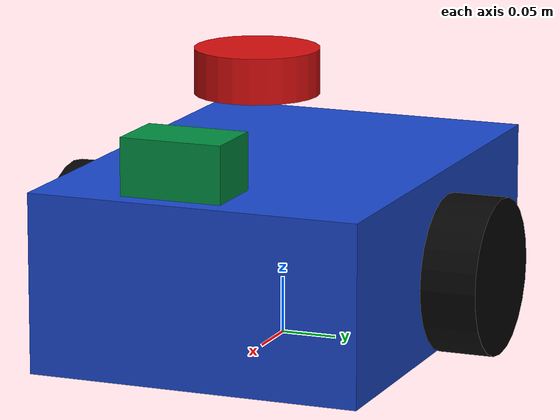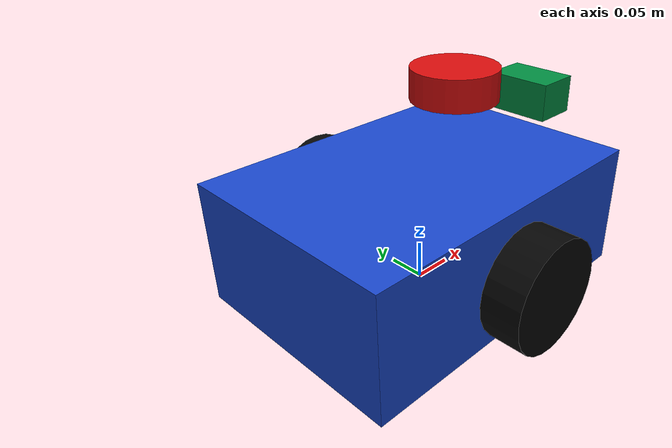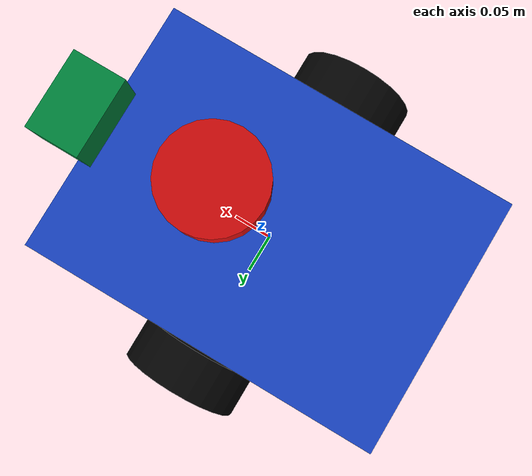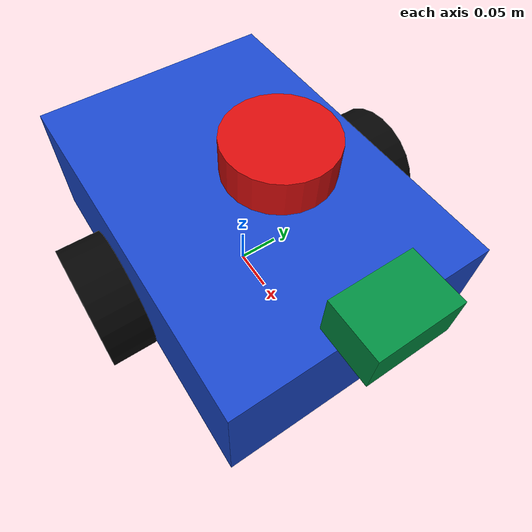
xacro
<?xml version="1.0"?>
<robot name="diffbot" xmlns:xacro="http://www.ros.org/wiki/xacro">
  <!--
    第 3 周第 3 小课开始使用 Xacro。
    Xacro 先展开成普通 URDF，再交给 robot_state_publisher 发布 TF。
  -->
  <xacro:include filename="diffbot_materials.xacro"/>
  <xacro:include filename="diffbot_components.xacro"/>

  <!-- 车体尺寸，单位是米。 -->
  <xacro:property name="body_length" value="0.42"/>
  <xacro:property name="body_width" value="0.30"/>
  <xacro:property name="body_height" value="0.16"/>
  <xacro:property name="body_mass" value="4.0"/>

  <!-- 轮子尺寸和安装位置。 -->
  <xacro:property name="wheel_radius" value="0.07"/>
  <xacro:property name="wheel_width" value="0.05"/>
  <xacro:property name="wheel_mass" value="0.35"/>
  <xacro:property name="wheel_y_offset" value="0.18"/>

  <!-- 传感器尺寸和安装位置。 -->
  <xacro:property name="camera_x" value="0.22"/>
  <xacro:property name="camera_z" value="0.20"/>
  <xacro:property name="camera_length" value="0.06"/>
  <xacro:property name="camera_width" value="0.09"/>
  <xacro:property name="camera_height" value="0.05"/>
  <xacro:property name="laser_x" value="0.06"/>
  <xacro:property name="laser_z" value="0.25"/>
  <xacro:property name="laser_radius" value="0.055"/>
  <xacro:property name="laser_height" value="0.04"/>

  <link name="base_link">
    <visual>
      <origin xyz="0 0 ${body_height / 2}" rpy="0 0 0"/>
      <geometry>
        <box size="${body_length} ${body_width} ${body_height}"/>
      </geometry>
      <material name="body_blue"/>
    </visual>

    <collision>
      <origin xyz="0 0 ${body_height / 2}" rpy="0 0 0"/>
      <geometry>
        <box size="${body_length} ${body_width} ${body_height}"/>
      </geometry>
    </collision>

    <inertial>
      <origin xyz="0 0 ${body_height / 2}" rpy="0 0 0"/>
      <mass value="${body_mass}"/>
      <inertia ixx="0.04" ixy="0.0" ixz="0.0" iyy="0.08" iyz="0.0" izz="0.10"/>
    </inertial>
  </link>

  <xacro:diffbot_wheel
    side="left"
    y_offset="${wheel_y_offset}"
    radius="${wheel_radius}"
    width="${wheel_width}"
    mass="${wheel_mass}"/>

  <xacro:diffbot_wheel
    side="right"
    y_offset="${-wheel_y_offset}"
    radius="${wheel_radius}"
    width="${wheel_width}"
    mass="${wheel_mass}"/>

  <xacro:diffbot_camera
    x="${camera_x}"
    z="${camera_z}"
    length="${camera_length}"
    width="${camera_width}"
    height="${camera_height}"/>

  <xacro:diffbot_laser
    x="${laser_x}"
    z="${laser_z}"
    radius="${laser_radius}"
    height="${laser_height}"/>
</robot>

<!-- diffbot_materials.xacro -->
<robot xmlns:xacro="http://www.ros.org/wiki/xacro">
  <!--
    本文件只放可复用材质。
    顶层 diffbot.urdf.xacro include 它之后，所有 link 都可以按 name 复用这些颜色。
  -->
  <material name="body_blue">
    <color rgba="0.10 0.28 0.80 1.0"/>
  </material>

  <material name="wheel_dark">
    <color rgba="0.02 0.02 0.02 1.0"/>
  </material>

  <material name="camera_green">
    <color rgba="0.00 0.55 0.25 1.0"/>
  </material>

  <material name="laser_red">
    <color rgba="0.85 0.05 0.05 1.0"/>
  </material>
</robot>

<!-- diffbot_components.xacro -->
<robot xmlns:xacro="http://www.ros.org/wiki/xacro">
  <!--
    组件宏把重复结构收拢起来。
    调整尺寸和安装位置时，优先改顶层 diffbot.urdf.xacro 中的 property。
  -->

  <xacro:macro name="diffbot_wheel" params="side y_offset radius width mass">
    <link name="${side}_wheel_link">
      <visual>
        <origin xyz="0 0 0" rpy="1.5708 0 0"/>
        <geometry>
          <cylinder radius="${radius}" length="${width}"/>
        </geometry>
        <material name="wheel_dark"/>
      </visual>
      <collision>
        <origin xyz="0 0 0" rpy="1.5708 0 0"/>
        <geometry>
          <cylinder radius="${radius}" length="${width}"/>
        </geometry>
      </collision>
      <inertial>
        <mass value="${mass}"/>
        <inertia ixx="0.001" ixy="0.0" ixz="0.0" iyy="0.001" iyz="0.0" izz="0.001"/>
      </inertial>
    </link>

    <joint name="${side}_wheel_joint" type="fixed">
      <parent link="base_link"/>
      <child link="${side}_wheel_link"/>
      <origin xyz="0 ${y_offset} ${radius}" rpy="0 0 0"/>
      <axis xyz="0 1 0"/>
    </joint>
  </xacro:macro>

  <xacro:macro name="diffbot_camera" params="x z length width height">
    <link name="camera_link">
      <visual>
        <origin xyz="0 0 0" rpy="0 0 0"/>
        <geometry>
          <box size="${length} ${width} ${height}"/>
        </geometry>
        <material name="camera_green"/>
      </visual>
    </link>

    <joint name="camera_joint" type="fixed">
      <parent link="base_link"/>
      <child link="camera_link"/>
      <origin xyz="${x} 0 ${z}" rpy="0 0 0"/>
    </joint>

    <link name="camera_optical_frame"/>

    <joint name="camera_optical_joint" type="fixed">
      <parent link="camera_link"/>
      <child link="camera_optical_frame"/>
      <origin xyz="0 0 0" rpy="-1.5708 0 -1.5708"/>
    </joint>
  </xacro:macro>

  <xacro:macro name="diffbot_laser" params="x z radius height">
    <link name="laser_link">
      <visual>
        <origin xyz="0 0 0" rpy="0 0 0"/>
        <geometry>
          <cylinder radius="${radius}" length="${height}"/>
        </geometry>
        <material name="laser_red"/>
      </visual>
    </link>

    <joint name="laser_joint" type="fixed">
      <parent link="base_link"/>
      <child link="laser_link"/>
      <origin xyz="${x} 0 ${z}" rpy="0 0 0"/>
    </joint>
  </xacro:macro>
</robot>
